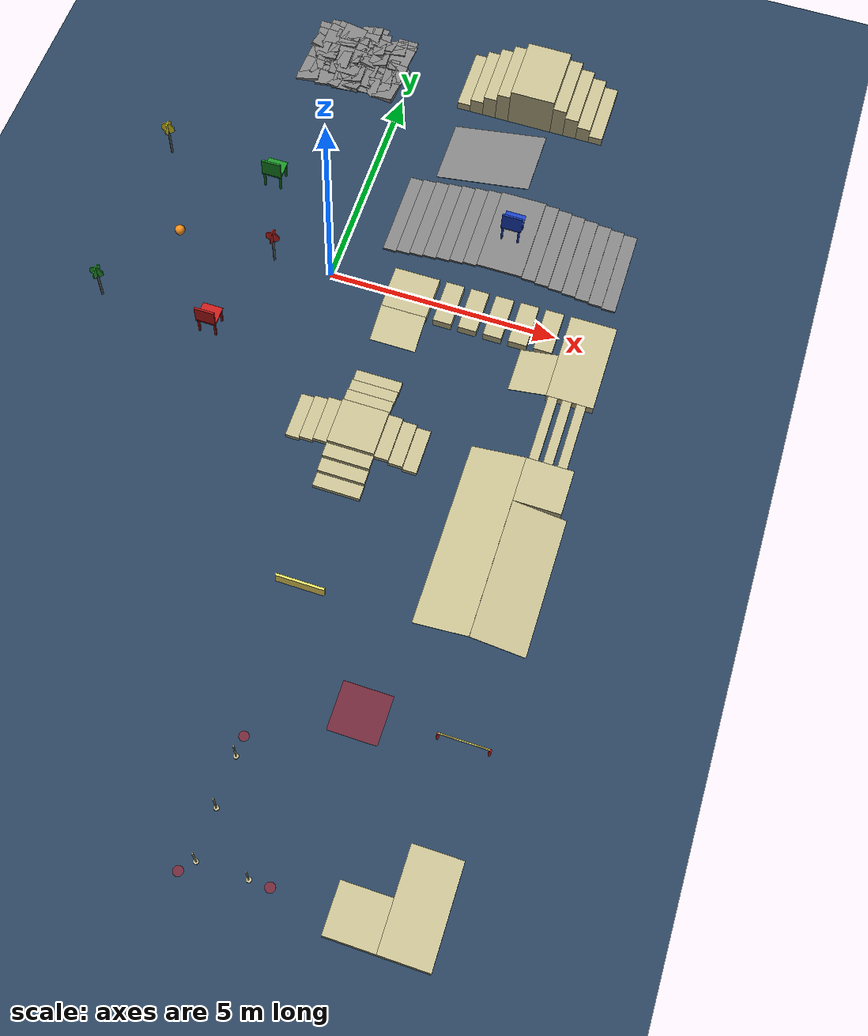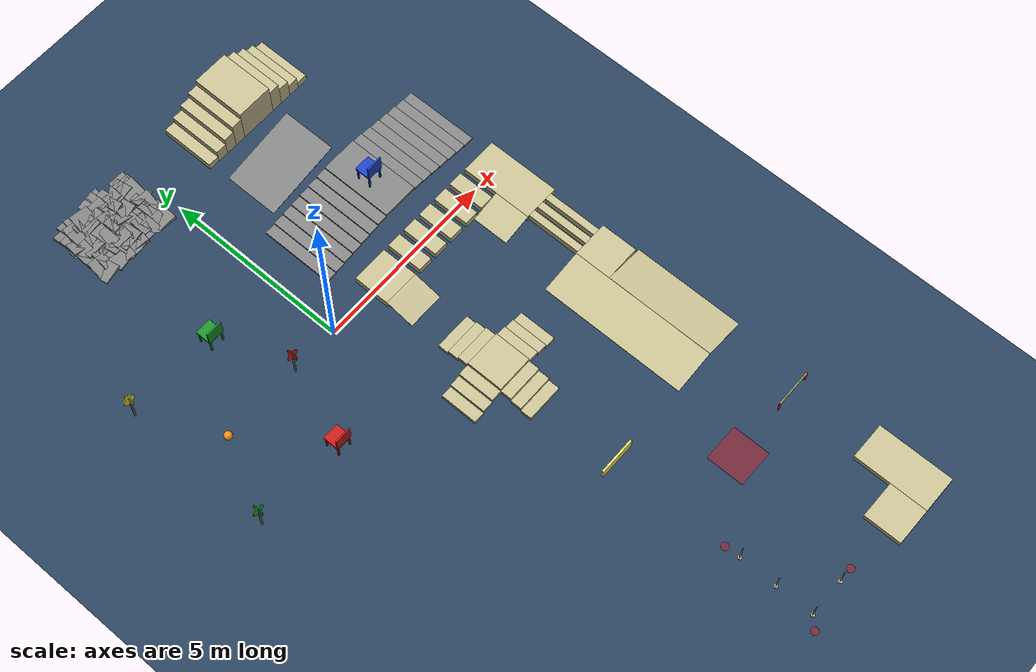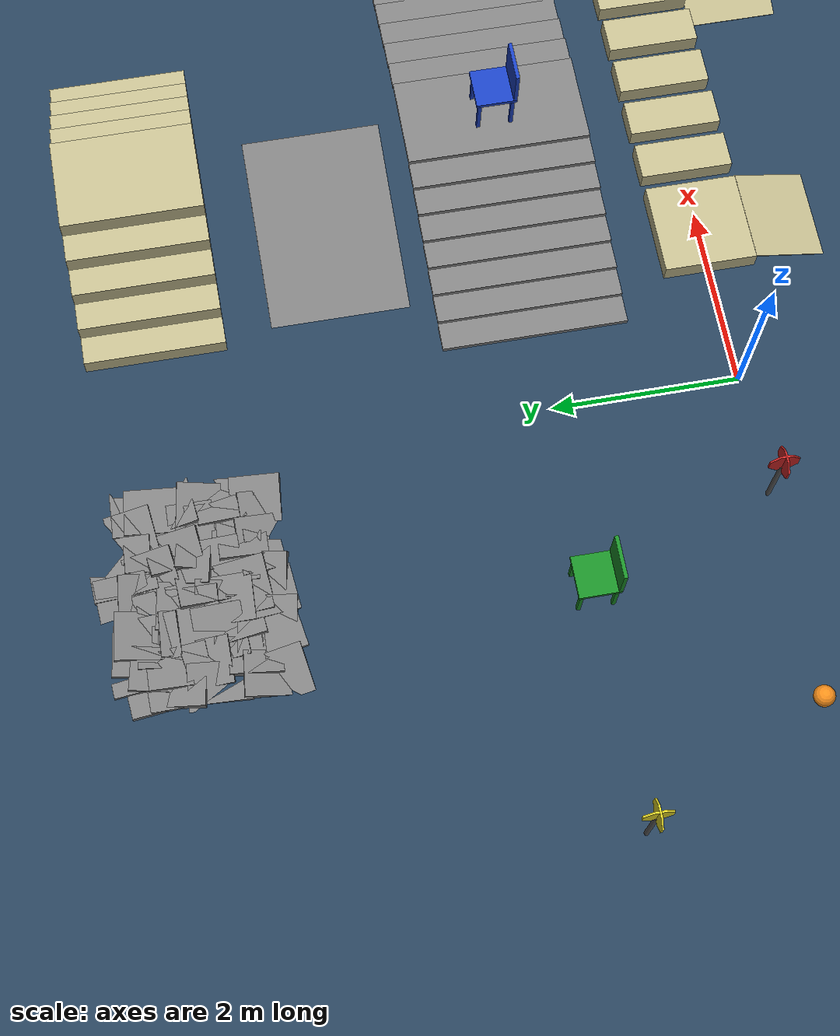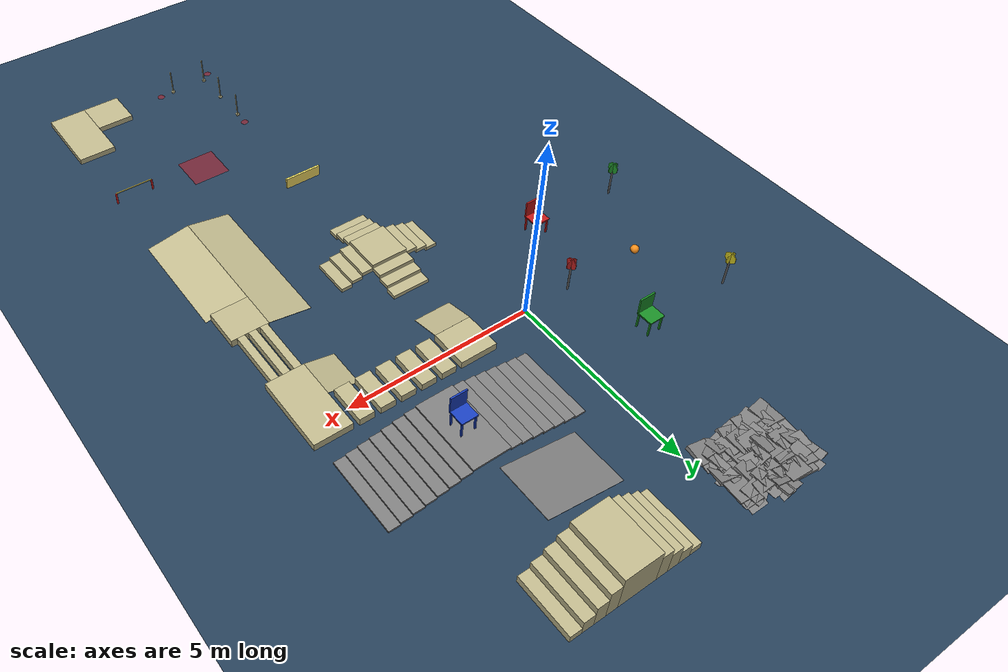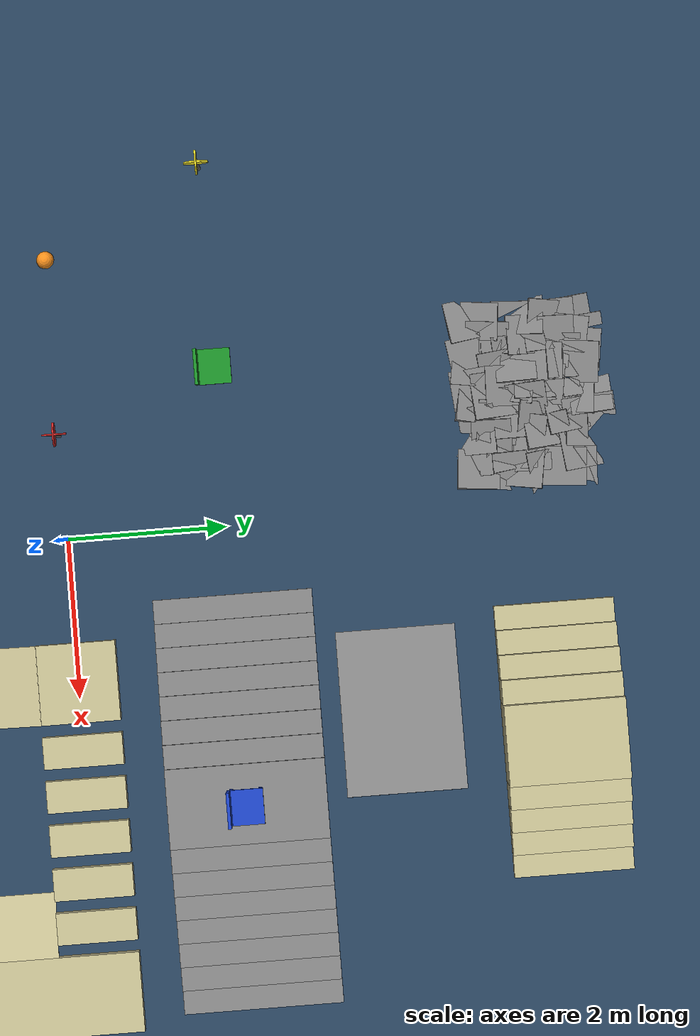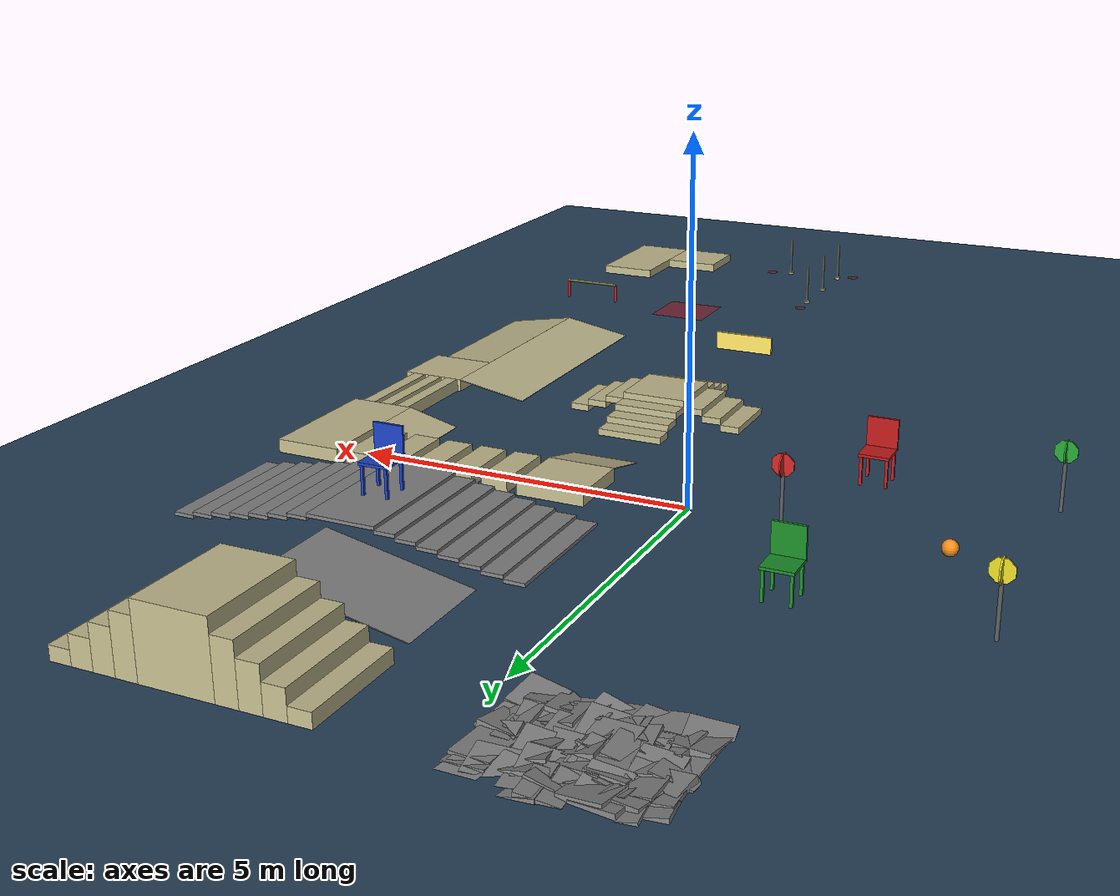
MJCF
<mujoco model="custom_scene">

  <asset>
    <texture type="2d" name="groundplane" builtin="checker" mark="edge" rgb1="0.2 0.3 0.4" rgb2="0.1 0.2 0.3" markrgb="0.8 0.8 0.8" width="300" height="300" />
    <material name="groundplane" texture="groundplane" texuniform="true" texrepeat="5 5" reflectance="0.2" />
    <material name="chair_green_mat" rgba="0.10 0.55 0.15 1" specular="0.1" shininess="0.1" />
    <material name="chair_red_mat" rgba="0.75 0.10 0.10 1" specular="0.1" shininess="0.1" />
    <material name="ball_orange_mat" rgba="0.95 0.55 0.10 1" specular="0.3" shininess="0.4" />
    <material name="sign_pole_mat" rgba="0.35 0.35 0.35 1" specular="0.2" shininess="0.2" />
    <texture name="sign_red_tex" type="2d" file="textures/stopsign_red.png" />
    <material name="sign_red_mat" texture="sign_red_tex" rgba="1 1 1 1" specular="0.2" shininess="0.2" />
    <texture name="sign_yellow_tex" type="2d" file="textures/stopsign_yellow.png" />
    <material name="sign_yellow_mat" texture="sign_yellow_tex" rgba="1 1 1 1" specular="0.2" shininess="0.2" />
    <texture name="sign_green_tex" type="2d" file="textures/stopsign_green.png" />
    <material name="sign_green_mat" texture="sign_green_tex" rgba="1 1 1 1" specular="0.2" shininess="0.2" />
    <material name="chair_blue_mat" rgba="0.10 0.25 0.75 1" specular="0.1" shininess="0.1" />
    <!-- (B, assist) octagonal STOP plate, printed by tools/make_stopsign_assets.py (its mesh option);
         faces normal to local +-y, texcoords map the same STOP texture on both faces -->
    <mesh name="stopsign_octagon"
      vertex="0 -0.01 0  0.15 -0.01 0.062132  0.062132 -0.01 0.15  -0.062132 -0.01 0.15  -0.15 -0.01 0.062132  -0.15 -0.01 -0.062132  -0.062132 -0.01 -0.15  0.062132 -0.01 -0.15  0.15 -0.01 -0.062132  0 0.01 0  0.15 0.01 0.062132  0.062132 0.01 0.15  -0.062132 0.01 0.15  -0.15 0.01 0.062132  -0.15 0.01 -0.062132  -0.062132 0.01 -0.15  0.062132 0.01 -0.15  0.15 0.01 -0.062132  0.15 -0.01 0.062132  0.062132 -0.01 0.15  0.15 0.01 0.062132  0.062132 0.01 0.15  0.062132 -0.01 0.15  -0.062132 -0.01 0.15  0.062132 0.01 0.15  -0.062132 0.01 0.15  -0.062132 -0.01 0.15  -0.15 -0.01 0.062132  -0.062132 0.01 0.15  -0.15 0.01 0.062132  -0.15 -0.01 0.062132  -0.15 -0.01 -0.062132  -0.15 0.01 0.062132  -0.15 0.01 -0.062132  -0.15 -0.01 -0.062132  -0.062132 -0.01 -0.15  -0.15 0.01 -0.062132  -0.062132 0.01 -0.15  -0.062132 -0.01 -0.15  0.062132 -0.01 -0.15  -0.062132 0.01 -0.15  0.062132 0.01 -0.15  0.062132 -0.01 -0.15  0.15 -0.01 -0.062132  0.062132 0.01 -0.15  0.15 0.01 -0.062132  0.15 -0.01 -0.062132  0.15 -0.01 0.062132  0.15 0.01 -0.062132  0.15 0.01 0.062132"
      face="0 1 2  0 2 3  0 3 4  0 4 5  0 5 6  0 6 7  0 7 8  0 8 1  9 11 10  9 12 11  9 13 12  9 14 13  9 15 14  9 16 15  9 17 16  9 10 17  18 20 21  18 21 19  22 24 25  22 25 23  26 28 29  26 29 27  30 32 33  30 33 31  34 36 37  34 37 35  38 40 41  38 41 39  42 44 45  42 45 43  46 48 49  46 49 47"
      texcoord="0.5 0.5  1 0.29289  0.70711 0  0.29289 0  0 0.29289  0 0.70711  0.29289 1  0.70711 1  1 0.70711  0.5 0.5  0 0.29289  0.29289 0  0.70711 0  1 0.29289  1 0.70711  0.70711 1  0.29289 1  0 0.70711  0.5 0.0225  0.5 0.0225  0.5 0.0225  0.5 0.0225  0.5 0.0225  0.5 0.0225  0.5 0.0225  0.5 0.0225  0.5 0.0225  0.5 0.0225  0.5 0.0225  0.5 0.0225  0.5 0.0225  0.5 0.0225  0.5 0.0225  0.5 0.0225  0.5 0.0225  0.5 0.0225  0.5 0.0225  0.5 0.0225  0.5 0.0225  0.5 0.0225  0.5 0.0225  0.5 0.0225  0.5 0.0225  0.5 0.0225  0.5 0.0225  0.5 0.0225  0.5 0.0225  0.5 0.0225  0.5 0.0225  0.5 0.0225" />
  </asset>
  <worldbody>
    <geom name="floor" size="0 0 0.05" type="plane" material="groundplane" />
    <geom pos="1.8 -7.0 0.15" type="box" size="0.025 0.5 0.15" quat="0.7071068 0.0 0.0 0.7071068" rgba="1.0 0.9 0.4 1.0" />
    <geom pos="4.8361 -12.5 0.075" type="box" size="0.5 0.5 0.075" quat="0.0 0.0 0.0 1.0" rgba="0.75 0.72 0.55 1.0" />
    <geom pos="5.8361 -12.0 0.075" type="box" size="0.5 1.0 0.075" quat="0.0 0.0 0.0 1.0" rgba="0.75 0.72 0.55 1.0" />
    <geom pos="6.2 -9.0 0.155" type="cylinder" size="0.025 0.155" quat="1.0 0.0 0.0 0.0" rgba="0.8 0.1 0.1 1.0" />
    <geom pos="5.2 -9.0 0.155" type="cylinder" size="0.025 0.155" quat="1.0 0.0 0.0 0.0" rgba="0.8 0.1 0.1 1.0" />
    <geom pos="5.7 -9.0 0.325" type="cylinder" size="0.015 0.5" quat="0.7071068 0.0 0.7071068 0.0" rgba="1.0 0.9 0.4 1.0" />
    <geom pos="3.7 -9.0 0.0" type="box" size="0.5 0.5 0.001" rgba="1.0 0.0 0.0 0.35" contype="0" conaffinity="0" />
    <geom pos="1.80 -4.75 0.05" type="box" size="0.15 0.5 0.05" quat="0.7071068 0.0 0.0 0.7071068" rgba="0.75 0.72 0.55 1.0" />
    <geom pos="1.80 -4.45 0.15" type="box" size="0.15 0.5 0.05" quat="0.7071068 0.0 0.0 0.7071068" rgba="0.75 0.72 0.55 1.0" />
    <geom pos="1.80 -4.15 0.25" type="box" size="0.15 0.5 0.05" quat="0.7071068 0.0 0.0 0.7071068" rgba="0.75 0.72 0.55 1.0" />
    <geom pos="1.80 -3.50 0.35" type="box" size="0.5 0.5 0.05" quat="0.7071068 0.0 0.0 0.7071068" rgba="0.75 0.72 0.55 1.0" />
    <geom pos="1.80 -2.85 0.25" type="box" size="0.15 0.5 0.05" quat="0.7071068 0.0 0.0 0.7071068" rgba="0.75 0.72 0.55 1.0" />
    <geom pos="1.80 -2.55 0.15" type="box" size="0.15 0.5 0.05" quat="0.7071068 0.0 0.0 0.7071068" rgba="0.75 0.72 0.55 1.0" />
    <geom pos="1.80 -2.25 0.05" type="box" size="0.15 0.5 0.05" quat="0.7071068 0.0 0.0 0.7071068" rgba="0.75 0.72 0.55 1.0" />
    <geom pos="2.45 -3.50 0.25" type="box" size="0.15 0.5 0.05" quat="1.0 0.0 0.0 0.0" rgba="0.75 0.72 0.55 1.0" />
    <geom pos="2.75 -3.50 0.15" type="box" size="0.15 0.5 0.05" quat="1.0 0.0 0.0 0.0" rgba="0.75 0.72 0.55 1.0" />
    <geom pos="3.05 -3.50 0.05" type="box" size="0.15 0.5 0.05" quat="1.0 0.0 0.0 0.0" rgba="0.75 0.72 0.55 1.0" />
    <geom pos="1.15 -3.50 0.25" type="box" size="0.15 0.5 0.05" quat="1.0 0.0 0.0 0.0" rgba="0.75 0.72 0.55 1.0" />
    <geom pos="0.85 -3.50 0.15" type="box" size="0.15 0.5 0.05" quat="1.0 0.0 0.0 0.0" rgba="0.75 0.72 0.55 1.0" />
    <geom pos="0.55 -3.50 0.05" type="box" size="0.15 0.5 0.05" quat="1.0 0.0 0.0 0.0" rgba="0.75 0.72 0.55 1.0" />
    <geom pos="1.8 -0.88 0.1" type="box" size="0.40 0.5 0.005" quat="0.701836 0.086175 -0.086175 0.701836" rgba="0.75 0.72 0.55 1.0" />
    <geom pos="1.8 0.0 0.10" type="box" size="0.5 0.5 0.10" quat="1.0 0.0 0.0 0.0" rgba="0.75 0.72 0.55 1.0" />
    <geom pos="2.65 0.0 0.10" type="box" size="0.2 0.5 0.10" quat="1.0 0.0 0.0 0.0" rgba="0.75 0.72 0.55 1.0" />
    <geom pos="3.2 0.0 0.10" type="box" size="0.2 0.5 0.10" quat="1.0 0.0 0.0 0.0" rgba="0.75 0.72 0.55 1.0" />
    <geom pos="3.75 0.0 0.10" type="box" size="0.2 0.5 0.10" quat="1.0 0.0 0.0 0.0" rgba="0.75 0.72 0.55 1.0" />
    <geom pos="4.3 0.0 0.10" type="box" size="0.2 0.5 0.10" quat="1.0 0.0 0.0 0.0" rgba="0.75 0.72 0.55 1.0" />
    <geom pos="4.85 0.0 0.10" type="box" size="0.2 0.5 0.10" quat="1.0 0.0 0.0 0.0" rgba="0.75 0.72 0.55 1.0" />
    <geom pos="5.7 -0.5 0.10" type="box" size="0.5 1.0 0.10" quat="1.0 0.0 0.0 0.0" rgba="0.75 0.72 0.55 1.0" />
    <geom pos="4.8002 -1.0 0.0951" type="box" size="0.4133 0.5 0.005" quat="0.992546 0.0 -0.121869 0.0" rgba="0.75 0.72 0.55 1.0" />
    <geom pos="5.35 -2.25 0.10" type="box" size="0.1 0.75 0.10" quat="1.0 0.0 0.0 0.0" rgba="0.75 0.72 0.55 1.0" />
    <geom pos="5.65 -2.25 0.10" type="box" size="0.1 0.75 0.10" quat="1.0 0.0 0.0 0.0" rgba="0.75 0.72 0.55 1.0" />
    <geom pos="5.95 -2.25 0.10" type="box" size="0.1 0.75 0.10" quat="1.0 0.0 0.0 0.0" rgba="0.75 0.72 0.55 1.0" />
    <geom pos="5.7 -3.5 0.10" type="box" size="0.5 0.5 0.10" quat="1.0 0.0 0.0 0.0" rgba="0.75 0.72 0.55 1.0" />
    <geom pos="4.6338 -5.0 0.0951" type="box" size="0.5759 2.0 0.005" quat="0.9961947 0.0 -0.0871557 0.0" rgba="0.75 0.72 0.55 1.0" />
    <geom pos="5.7681 -5.5 0.0951" type="box" size="0.5759 1.5 0.005" quat="0.9961947 0.0 0.0871557 0.0" rgba="0.75 0.72 0.55 1.0" />
    <geom pos="1.8 -10.1 0.0" type="cylinder" size="0.1 0.001" rgba="1.0 0.0 0.0 0.35" contype="0" conaffinity="0" />
    <geom pos="3.2 -12.5 0.0" type="cylinder" size="0.1 0.001" rgba="1.0 0.0 0.0 0.35" contype="0" conaffinity="0" />
    <geom pos="1.55 -12.75 0.0" type="cylinder" size="0.1 0.001" rgba="1.0 0.0 0.0 0.35" contype="0" conaffinity="0" />
    <geom pos="1.8 -10.5 0.02" type="cylinder" size="0.05 0.02" quat="1.0 0.0 0.0 0.0" rgba="0.75 0.72 0.55 1.0" />
    <geom pos="1.8 -10.5 0.37" type="cylinder" size="0.015 0.33" quat="1.0 0.0 0.0 0.0" rgba="0.75 0.72 0.55 1.0" />
    <geom pos="1.8 -11.5 0.02" type="cylinder" size="0.05 0.02" quat="1.0 0.0 0.0 0.0" rgba="0.75 0.72 0.55 1.0" />
    <geom pos="1.8 -11.5 0.37" type="cylinder" size="0.015 0.33" quat="1.0 0.0 0.0 0.0" rgba="0.75 0.72 0.55 1.0" />
    <geom pos="1.8 -12.5 0.02" type="cylinder" size="0.05 0.02" quat="1.0 0.0 0.0 0.0" rgba="0.75 0.72 0.55 1.0" />
    <geom pos="1.8 -12.5 0.37" type="cylinder" size="0.015 0.33" quat="1.0 0.0 0.0 0.0" rgba="0.75 0.72 0.55 1.0" />
    <geom pos="2.8 -12.5 0.02" type="cylinder" size="0.05 0.02" quat="1.0 0.0 0.0 0.0" rgba="0.75 0.72 0.55 1.0" />
    <geom pos="2.8 -12.5 0.37" type="cylinder" size="0.015 0.33" quat="1.0 0.0 0.0 0.0" rgba="0.75 0.72 0.55 1.0" />
    <geom pos="1.0 2.0 0.025" type="box" size="0.15 1.0 0.025" quat="1.0 0.0 0.0 0.0" />
    <geom pos="1.3 2.0 0.075" type="box" size="0.15 1.0 0.025" quat="1.0 0.0 0.0 0.0" />
    <geom pos="1.6 2.0 0.125" type="box" size="0.15 1.0 0.025" quat="1.0 0.0 0.0 0.0" />
    <geom pos="1.9 2.0 0.175" type="box" size="0.15 1.0 0.025" quat="1.0 0.0 0.0 0.0" />
    <geom pos="2.2 2.0 0.225" type="box" size="0.15 1.0 0.025" quat="1.0 0.0 0.0 0.0" />
    <geom pos="2.5 2.0 0.275" type="box" size="0.15 1.0 0.025" quat="1.0 0.0 0.0 0.0" />
    <geom pos="2.8 2.0 0.325" type="box" size="0.15 1.0 0.025" quat="1.0 0.0 0.0 0.0" />
    <geom pos="3.45 2.0 0.375" type="box" size="0.5 1.0 0.025" quat="1.0 0.0 0.0 0.0" />
    <geom pos="4.1 2.0 0.325" type="box" size="0.15 1.0 0.025" quat="1.0 0.0 0.0 0.0" />
    <geom pos="4.4 2.0 0.275" type="box" size="0.15 1.0 0.025" quat="1.0 0.0 0.0 0.0" />
    <geom pos="4.7 2.0 0.225" type="box" size="0.15 1.0 0.025" quat="1.0 0.0 0.0 0.0" />
    <geom pos="5.0 2.0 0.175" type="box" size="0.15 1.0 0.025" quat="1.0 0.0 0.0 0.0" />
    <geom pos="5.3 2.0 0.125" type="box" size="0.15 1.0 0.025" quat="1.0 0.0 0.0 0.0" />
    <geom pos="5.6 2.0 0.075" type="box" size="0.15 1.0 0.025" quat="1.0 0.0 0.0 0.0" />
    <geom pos="5.9 2.0 0.025" type="box" size="0.15 1.0 0.025" quat="1.0 0.0 0.0 0.0" />
    <geom pos="2.0 4.0 0.1" type="box" size="1.5 0.75 0.005" quat="0.9950041652780258 0.0 -0.09983341664682815 0.0" />
    <geom pos="1.4 6.0 0.10" type="box" size="0.15 0.75 0.10" quat="1.0 0.0 0.0 0.0" rgba="0.75 0.72 0.55 1.0" />
    <geom pos="1.7 6.0 0.20" type="box" size="0.15 0.75 0.20" quat="1.0 0.0 0.0 0.0" rgba="0.75 0.72 0.55 1.0" />
    <geom pos="2.0 6.0 0.30" type="box" size="0.15 0.75 0.30" quat="1.0 0.0 0.0 0.0" rgba="0.75 0.72 0.55 1.0" />
    <geom pos="2.3 6.0 0.40" type="box" size="0.15 0.75 0.40" quat="1.0 0.0 0.0 0.0" rgba="0.75 0.72 0.55 1.0" />
    <geom pos="2.95 6.0 0.50" type="box" size="0.50 0.75 0.50" quat="1.0 0.0 0.0 0.0" rgba="0.75 0.72 0.55 1.0" />
    <geom pos="3.60 6.0 0.40" type="box" size="0.15 0.75 0.40" quat="1.0 0.0 0.0 0.0" rgba="0.75 0.72 0.55 1.0" />
    <geom pos="3.90 6.0 0.30" type="box" size="0.15 0.75 0.30" quat="1.0 0.0 0.0 0.0" rgba="0.75 0.72 0.55 1.0" />
    <geom pos="4.20 6.0 0.20" type="box" size="0.15 0.75 0.20" quat="1.0 0.0 0.0 0.0" rgba="0.75 0.72 0.55 1.0" />
    <geom pos="4.50 6.0 0.10" type="box" size="0.15 0.75 0.10" quat="1.0 0.0 0.0 0.0" rgba="0.75 0.72 0.55 1.0" />
    <geom pos="-2.3179973398407565 5.173660321080885 -0.25" type="box" size="0.2568216778785459 0.2608020098770089 0.2619541072037832" quat="0.9930658271270357 -0.05910360995856133 -0.06731065544310916 0.0761334482746007" />
    <geom pos="-2.3179973398407565 5.3620612607436735 -0.25" type="box" size="0.23778028947050467 0.26051225137569556 0.27137457425982286" quat="0.9959802827127009 0.07435995796871331 0.0004862731479656538 -0.04993632582444846" />
    <geom pos="-2.3179973398407565 5.545897059602109 -0.25" type="box" size="0.23841994611378936 0.2717839884518381 0.22585827399286504" quat="0.9983504429181294 -0.004811901627841528 0.03471877670768104 -0.045473566737405234" />
    <geom pos="-2.3179973398407565 5.7436240471772795 -0.25" type="box" size="0.2552179019048769 0.2548992578792955 0.22547735976326444" quat="0.9968270877924189 -0.029673908987198697 0.06777847718526858 -0.029347814214192768" />
    <geom pos="-2.3179973398407565 5.940214647011584 -0.25" type="box" size="0.24313116620329878 0.2372064979204117 0.26079933745117434" quat="0.9952106364954509 0.05088987714749159 -0.07605843245051555 -0.03436748846516202" />
    <geom pos="-2.3179973398407565 6.165430585901471 -0.25" type="box" size="0.24786042386990592 0.2322559052231109 0.2644037606269708" quat="0.9936075351397807 -0.05017393314139304 0.06986162224674641 -0.07311632022760194" />
    <geom pos="-2.3179973398407565 6.315657865031069 -0.25" type="box" size="0.23704265198840277 0.24982080672772003 0.2530694373586838" quat="0.9981716459301547 0.036179123385437884 0.04523497974247521 0.017269420947002005" />
    <geom pos="-2.3179973398407565 6.489372835072359 -0.25" type="box" size="0.2647428927965494 0.2716292502682415 0.23725049444938928" quat="0.9954041516289313 0.019099981466976248 0.07663366510923347 0.05415761257454444" />
    <geom pos="-2.094119617957536 5.194943631570213 -0.25" type="box" size="0.23176840693038148 0.23782936054799508 0.2282032657053922" quat="0.9973366591969123 0.030692664684553082 -0.030015392527106853 0.058962910104125923" />
    <geom pos="-2.094119617957536 5.441090326561234 -0.25" type="box" size="0.2602142310926322 0.27213502289176367 0.2574009440402366" quat="0.9948915480473169 0.023650461407535205 0.08508706956405496 -0.04890453856469255" />
    <geom pos="-2.094119617957536 5.642958951230403 -0.25" type="box" size="0.24800055056479955 0.24050676557282252 0.23522489807277194" quat="0.9912055235117067 0.06188914817453858 -0.09720856678264424 -0.0650525790586179" />
    <geom pos="-2.094119617957536 5.884810142659838 -0.25" type="box" size="0.24637516954806898 0.24364583504893206 0.2682443460752295" quat="0.9964495083946477 -0.07467561549070643 -0.038754439691442995 0.003165924091257204" />
    <geom pos="-2.094119617957536 6.129893093768145 -0.25" type="box" size="0.2378958269703999 0.25045408022075055 0.24760364656411665" quat="0.9946240462872651 -0.03963038800955788 -0.08917648605658504 0.03464091840526007" />
    <geom pos="-2.094119617957536 6.31135792935651 -0.25" type="box" size="0.2612154064649683 0.2252849660353503 0.26933214617336004" quat="0.997742809172301 0.019590451180868298 0.06391648942914147 -0.006339033565912353" />
    <geom pos="-2.094119617957536 6.4905285510291915 -0.25" type="box" size="0.22768983323309258 0.23025468157122184 0.2748062344121069" quat="0.9940843963100783 0.05105793020576152 0.009164090402224958 -0.0954218016127878" />
    <geom pos="-2.094119617957536 6.650993287072798 -0.25" type="box" size="0.25443787917913946 0.24575387105878618 0.22934424641420587" quat="0.9953832160779188 -0.0075142647566912866 0.08305501342257929 0.04751477371219154" />
    <geom pos="-1.8951777534978893 5.178742263102535 -0.25" type="box" size="0.256127371544264 0.24353861032614957 0.2714578153598507" quat="0.996547165679354 -0.008558846106514282 0.009384988866828401 0.08205129318749771" />
    <geom pos="-1.8951777534978893 5.353646654030374 -0.25" type="box" size="0.23858897994497189 0.2426691342857623 0.26961659613969635" quat="0.997689480058865 0.014145078555906384 0.009115651940537827 -0.06582190381793727" />
    <geom pos="-1.8951777534978893 5.575640096199311 -0.25" type="box" size="0.24430646334884096 0.2676093509240798 0.23693271670520474" quat="0.9976019172675967 -0.06794745094616256 0.006187887696065785 -0.011630503849579829" />
    <geom pos="-1.8951777534978893 5.728196634759373 -0.25" type="box" size="0.25668697148716296 0.2743986770827004 0.23696403861156407" quat="0.9946311966964959 -0.0774649076913635 0.05866511796477466 0.03558615698054331" />
    <geom pos="-1.8951777534978893 5.954288148947323 -0.25" type="box" size="0.2748179458028994 0.25407956175122554 0.25142548243710355" quat="0.9927720663552536 0.03885622734718657 0.06180632563910765 0.09525647469886914" />
    <geom pos="-1.8951777534978893 6.198076908897641 -0.25" type="box" size="0.23522918501552104 0.2714895927340788 0.23659922178360912" quat="0.9944408196408429 0.027722532803612636 -0.06883505448003607 -0.07470376618171105" />
    <geom pos="-1.8951777534978893 6.356335079330304 -0.25" type="box" size="0.253243646653926 0.26648639763264487 0.22751627090926196" quat="0.9924345646356405 0.06351743627133029 0.09661714031088077 -0.041283149154730255" />
    <geom pos="-1.8951777534978893 6.6037178705715744 -0.25" type="box" size="0.2664884535468762 0.26472237049442093 0.2545826559482188" quat="0.996208812433608 0.04792667434016892 0.03088022810200046 -0.06570728596343135" />
    <geom pos="-1.7450143557797366 5.181798049538029 -0.25" type="box" size="0.22764974830145798 0.2314500042225232 0.26635647118774647" quat="0.996420562587967 -0.02530598413067966 -0.01712092616039989 -0.07881968983996092" />
    <geom pos="-1.7450143557797366 5.396539066742657 -0.25" type="box" size="0.24515338305934362 0.25502436912192245 0.23509532716059323" quat="0.9974817825235419 0.033698559354477776 -0.06057332552735373 -0.01501242370995589" />
    <geom pos="-1.7450143557797366 5.5477605493550115 -0.25" type="box" size="0.2368415768982088 0.2653984778068547 0.25193186806340717" quat="0.9933816957092091 -0.04426535864216467 0.0892264769079807 0.057201577537394625" />
    <geom pos="-1.7450143557797366 5.764238738853998 -0.25" type="box" size="0.257475541143157 0.25587521442146555 0.2684267956125346" quat="0.9955849335110497 0.004076118120639651 -0.09299366924131539 0.012091439447074191" />
    <geom pos="-1.7450143557797366 5.942956213887727 -0.25" type="box" size="0.23647345784635188 0.22779489919605103 0.2690566454457882" quat="0.9997372307105926 0.020286738832439623 -0.010113822112874779 0.003410038259163467" />
    <geom pos="-1.7450143557797366 6.162981335139796 -0.25" type="box" size="0.2336152227884161 0.23785626414299832 0.26272786991330355" quat="0.9954569549676405 0.08638675499005252 -0.03150236191317218 -0.024705881136540285" />
    <geom pos="-1.7450143557797366 6.344025407207907 -0.25" type="box" size="0.2364006101773331 0.23674709170116234 0.2660167000427503" quat="0.9941020005048972 -0.09350614404282417 -0.05493059192638792 0.0006660998579442658" />
    <geom pos="-1.7450143557797366 6.5791872438688825 -0.25" type="box" size="0.259653062502181 0.26359758888480966 0.27170867851854713" quat="0.9955751902075182 0.06572529509454274 0.04059253213564211 -0.05350207998588654" />
    <geom pos="-1.4950537649717406 5.196975242498044 -0.25" type="box" size="0.24902209995429173 0.24604186796843594 0.26555264385759036" quat="0.9981753741369879 0.027059282981497578 0.02078151255996191 0.049818133312398136" />
    <geom pos="-1.4950537649717406 5.415093649392617 -0.25" type="box" size="0.22561317519118573 0.23246623591498758 0.2516053992906602" quat="0.9961431033663982 -0.019679813255757937 0.07777937635153075 0.035524515199325105" />
    <geom pos="-1.4950537649717406 5.596072881787104 -0.25" type="box" size="0.2545347271371952 0.2527292932516396 0.272364707011277" quat="0.9987990019474599 -0.0468132050914785 0.002764373695484487 -0.01419280718860587" />
    <geom pos="-1.4950537649717406 5.788444207457658 -0.25" type="box" size="0.257823578756761 0.22815201323013437 0.2506904868770564" quat="0.9907800223935689 0.08207700037219429 -0.06679273748567588 -0.08459931119619979" />
    <geom pos="-1.4950537649717406 5.962479724512656 -0.25" type="box" size="0.23447002037921025 0.260091883647859 0.2613547781123637" quat="0.994185747243896 -0.045779429335849345 -0.09537527521663794 -0.020062420196245392" />
    <geom pos="-1.4950537649717406 6.137620949716146 -0.25" type="box" size="0.25502378303486756 0.24137626830945555 0.26521755821448284" quat="0.9954511067004865 0.04827241542514884 0.023378972724717166 -0.07874193109224191" />
    <geom pos="-1.4950537649717406 6.345742058941403 -0.25" type="box" size="0.23763376291279575 0.27259418014745557 0.24184880568666417" quat="0.9979730938550316 -0.0521706328108408 -0.03256129013590577 0.01636127740178204" />
    <geom pos="-1.4950537649717406 6.548966807280673 -0.25" type="box" size="0.23004532593424165 0.24736965888987583 0.22917624237245732" quat="0.993938322382385 -0.041286377558295506 -0.09233464220936707 0.04308549844056845" />
    <geom pos="-1.2872521554407157 5.194072124237239 -0.25" type="box" size="0.2725857334366114 0.23611730648841156 0.25109418723334265" quat="0.9870880287314421 -0.09538067591152324 -0.0888119213223197 -0.09312460914696315" />
    <geom pos="-1.2872521554407157 5.418639818976418 -0.25" type="box" size="0.2326397456179607 0.2609646699674687 0.2717115772948157" quat="0.9928206111485406 -0.07383059897166898 -0.08473752136579614 0.040936892980589765" />
    <geom pos="-1.2872521554407157 5.655974569843163 -0.25" type="box" size="0.22633109461398734 0.25911291311168594 0.23532484499883452" quat="0.9947769304653071 -0.023834507399340135 0.09176246279588879 -0.037820963666801724" />
    <geom pos="-1.2872521554407157 5.8981628648303595 -0.25" type="box" size="0.27278934520816167 0.2559269445001904 0.26076472835929454" quat="0.9936318869346414 0.0561019165840355 0.09234219275279033 0.0319557140415977" />
    <geom pos="-1.2872521554407157 6.064939027275534 -0.25" type="box" size="0.2481756437845515 0.2613413397088905 0.24788858471207542" quat="0.9992310163557966 0.006919915638721734 0.03652449975321466 -0.012468024618680441" />
    <geom pos="-1.2872521554407157 6.288670079370122 -0.25" type="box" size="0.2574127585385611 0.27445220033632356 0.22507618952620437" quat="0.9984337612791753 0.04947883993440395 -0.0010074967830211658 -0.026093173185657285" />
    <geom pos="-1.2872521554407157 6.4987760234638605 -0.25" type="box" size="0.2442462188069663 0.2639082925274208 0.24918893213917415" quat="0.9910480688126146 0.08639971284060838 -0.0903343762232188 -0.04688832899783648" />
    <geom pos="-1.2872521554407157 6.675611985491267 -0.25" type="box" size="0.2507168814441121 0.26699708557208374 0.26588306060638556" quat="0.9968882348111167 0.009466759168649483 -0.06920917552433178 0.03652831489763918" />
    <geom pos="-1.0678149575697586 5.238251070535694 -0.25" type="box" size="0.2331754586513582 0.22873009754409884 0.2593258638743009" quat="0.9962563091989393 0.014506022500180732 0.069646748226122 0.049114887295595266" />
    <geom pos="-1.0678149575697586 5.471732496077581 -0.25" type="box" size="0.2653495693182789 0.26581370557074685 0.2509273010188512" quat="0.9948019811445705 -0.05898118120008214 0.04034485064897968 -0.07254330845220838" />
    <geom pos="-1.0678149575697586 5.691153717662407 -0.25" type="box" size="0.26309077142424103 0.26536949948987093 0.26566703066149744" quat="0.998331608401392 -0.025703385975953945 -0.05139460706256987 0.005650661991725779" />
    <geom pos="-1.0678149575697586 5.938910564562482 -0.25" type="box" size="0.23082606038737274 0.23890770539441533 0.25941695887199245" quat="0.99040745217393 -0.09494180013051996 0.05600240658814475 -0.08332384846283197" />
    <geom pos="-1.0678149575697586 6.13746533389903 -0.25" type="box" size="0.2676431215498913 0.2569308659994288 0.24597694927356487" quat="0.9955894165044442 0.04511524606234168 -0.003741035154326279 -0.08217258042101841" />
    <geom pos="-1.0678149575697586 6.328213254628996 -0.25" type="box" size="0.24188540919954635 0.25556145122229207 0.2605619987765001" quat="0.9929731934387934 -0.06598945456828725 -0.06809928840246085 0.07079629875087447" />
    <geom pos="-1.0678149575697586 6.554891603524267 -0.25" type="box" size="0.23121916641107804 0.25266417867731916 0.25489063309084503" quat="0.9984565221200774 -0.02714563973423854 0.029423903667849492 0.03849573446816443" />
    <geom pos="-1.0678149575697586 6.718482966003368 -0.25" type="box" size="0.27418971733780156 0.2623437838864593 0.23694037285314332" quat="0.9968347573500278 0.015128289848683302 0.06990516881209438 0.03471121949050888" />
    <geom pos="-0.8851136474992356 5.233272057743225 -0.25" type="box" size="0.2587161160845902 0.2542459313914242 0.25268742624288776" quat="0.9956323623605605 0.07455213252171443 -0.05585558926184348 0.006191260373025539" />
    <geom pos="-0.8851136474992356 5.410759300563648 -0.25" type="box" size="0.24019625793101548 0.2509280955260936 0.26698317271101046" quat="0.9960056830073374 0.025487333399660517 0.08516393482003458 -0.008377318140719903" />
    <geom pos="-0.8851136474992356 5.622546965631826 -0.25" type="box" size="0.22527085609750916 0.22924847380626232 0.23073331588883172" quat="0.9982201065088221 0.016292210993739946 0.013620740418279952 0.05572843307423328" />
    <geom pos="-0.8851136474992356 5.856118124892678 -0.25" type="box" size="0.26833255247166926 0.2512767990265972 0.2502231376336179" quat="0.9914910532543448 0.0657880493114159 0.05073139628229043 -0.10021850784978792" />
    <geom pos="-0.8851136474992356 6.010914595891683 -0.25" type="box" size="0.24926441451407527 0.22868800964152894 0.26501630221174116" quat="0.990736605756697 -0.0765632176593298 -0.09876375004658954 0.05314859727296924" />
    <geom pos="-0.8851136474992356 6.1657945570092965 -0.25" type="box" size="0.26823427325895977 0.263134568634285 0.23692064318485426" quat="0.9903439387899988 0.07219524819688558 0.09310840228148876 0.07305856872598579" />
    <geom pos="-0.8851136474992356 6.383066094410735 -0.25" type="box" size="0.23772929143507357 0.2619329708548053 0.23258884134606547" quat="0.9928463525385446 0.07348810370848206 0.09252710448645944 -0.017156742103069993" />
    <geom pos="-0.8851136474992356 6.551482176174038 -0.25" type="box" size="0.25127741834221506 0.25307864976328337 0.234931895271364" quat="0.994062479132312 -0.084918495271965 -0.05565932062022146 -0.03912386445844099" />
    <geom pos="-0.6441452943469552 5.193190826541208 -0.25" type="box" size="0.27016649011158844 0.23778885128164629 0.25859862297032477" quat="0.9957774962333289 0.08893738517887846 -0.021654911548168992 0.006955883744530942" />
    <geom pos="-0.6441452943469552 5.407266358883468 -0.25" type="box" size="0.24982888074520473 0.26972381569065607 0.2275629646713632" quat="0.9942571418988088 0.02444442288698024 0.050336521935401994 -0.09122193010664256" />
    <geom pos="-0.6441452943469552 5.56363948710079 -0.25" type="box" size="0.24725848381417467 0.2326432801330426 0.2476341019968084" quat="0.9935769557551848 -0.05688836927692267 -0.06858315894908604 0.0697488117593134" />
    <geom pos="-0.6441452943469552 5.716461923308758 -0.25" type="box" size="0.226746163574222 0.25188961955216527 0.24650452053954758" quat="0.9981029078160676 0.03471313574303335 -0.0493522060742233 -0.012245136651074443" />
    <geom pos="-0.6441452943469552 5.896430073001983 -0.25" type="box" size="0.25284949298017617 0.23421620066432108 0.2621382648463894" quat="0.9996413412447853 0.009523771195346772 -0.02374945051322109 -0.007902547492127014" />
    <geom pos="-0.6441452943469552 6.110845613879558 -0.25" type="box" size="0.23421403581041014 0.2504556848552827 0.24096555776925194" quat="0.9982371379292613 0.05906199571247059 0.004184466367765714 0.004097238396071534" />
    <geom pos="-0.6441452943469552 6.301410327752269 -0.25" type="box" size="0.2296817145699627 0.2701766916372966 0.22803599234835198" quat="0.9993879202059675 0.00903361239651759 0.0071600522792900426 -0.03302896372607247" />
    <geom pos="-0.6441452943469552 6.470340592771366 -0.25" type="box" size="0.2742166750011587 0.23990439594655139 0.2609404931878803" quat="0.9954980192986956 -0.06477558432537366 -0.03478863652617152 0.059812774691783824" />
    <geom pos="-0.43033316974190594 5.176946043237525 -0.25" type="box" size="0.2511344405622137 0.26383180387822514 0.2729516287367074" quat="0.9939152287364423 -0.054017256979398534 -0.08418383902399898 -0.0461273810376057" />
    <geom pos="-0.43033316974190594 5.409693792302493 -0.25" type="box" size="0.23878438774624536 0.22858057493504688 0.24808981791323623" quat="0.9942721168135948 -0.06322741578652484 -0.032958930763236916 -0.0796175891553822" />
    <geom pos="-0.43033316974190594 5.573593446642387 -0.25" type="box" size="0.2647545698926724 0.25215736713350106 0.25522885339490087" quat="0.9971918839448468 -0.004732654353889047 0.07222000940536273 0.019241071144380294" />
    <geom pos="-0.43033316974190594 5.819531161619798 -0.25" type="box" size="0.2538318010250847 0.23661725487197 0.26323696729639623" quat="0.9929867679849618 0.07588268800385974 -0.046355180482866284 -0.07791208834634974" />
    <geom pos="-0.43033316974190594 6.047888701789067 -0.25" type="box" size="0.25684720236482583 0.25568474221031684 0.24397094296107352" quat="0.9925256546500537 -0.08214715587137877 0.06615741576234473 0.06138294537877935" />
    <geom pos="-0.43033316974190594 6.283676056613722 -0.25" type="box" size="0.2432692787269645 0.2742601402399693 0.2689467974776609" quat="0.9989897410981501 0.0047037010179340685 0.0014590493232283363 -0.04466814919444852" />
    <geom pos="-0.43033316974190594 6.458239009480634 -0.25" type="box" size="0.2474330649412728 0.2551435998627988 0.23002773988805483" quat="0.9982311862818315 0.0506459597703481 0.025989046975463247 -0.01714802993392417" />
    <geom pos="-0.43033316974190594 6.703309377175586 -0.25" type="box" size="0.2301029552870502 0.2556223065028505 0.2349557527965884" quat="0.9948672058648923 -0.034182171957127715 -0.0030330068097560517 -0.09519255582537542" />
    <body name="green_chair" pos="-2.0 2.0 0">
      <geom type="box" size="0.02 0.02 0.21" pos=" 0.18  0.18 0.21" material="chair_green_mat" />
      <geom type="box" size="0.02 0.02 0.21" pos=" 0.18 -0.18 0.21" material="chair_green_mat" />
      <geom type="box" size="0.02 0.02 0.21" pos="-0.18  0.18 0.21" material="chair_green_mat" />
      <geom type="box" size="0.02 0.02 0.21" pos="-0.18 -0.18 0.21" material="chair_green_mat" />
      <geom type="box" size="0.22 0.22 0.02" pos="0 0 0.44" material="chair_green_mat" />
      <geom type="box" size="0.22 0.02 0.22" pos="0 -0.20 0.66" material="chair_green_mat" />
    </body>
    <body name="red_chair" pos="-2.0 -2.0 0">
      <geom type="box" size="0.02 0.02 0.21" pos=" 0.18  0.18 0.21" material="chair_red_mat" />
      <geom type="box" size="0.02 0.02 0.21" pos=" 0.18 -0.18 0.21" material="chair_red_mat" />
      <geom type="box" size="0.02 0.02 0.21" pos="-0.18  0.18 0.21" material="chair_red_mat" />
      <geom type="box" size="0.02 0.02 0.21" pos="-0.18 -0.18 0.21" material="chair_red_mat" />
      <geom type="box" size="0.22 0.22 0.02" pos="0 0 0.44" material="chair_red_mat" />
      <geom type="box" size="0.22 0.02 0.22" pos="0 -0.20 0.66" material="chair_red_mat" />
    </body>
    <body name="orange_sports_ball" pos="-3.5 0.0 0.11">
      <geom type="sphere" size="0.11" material="ball_orange_mat" />
    </body>
    <body name="red_stop_sign" pos="-1.3 0.0 0">
      <geom type="cylinder" size="0.025 0.375" pos="0 0 0.375" material="sign_pole_mat" />
      <geom type="mesh" mesh="stopsign_octagon" pos="0 0 0.85" euler="0 0 0" material="sign_red_mat" />
      <geom type="mesh" mesh="stopsign_octagon" pos="0 0 0.85" euler="0 0 90" material="sign_red_mat" />
    </body>
    <body name="yellow_stop_sign" pos="-4.5 2.0 0">
      <geom type="cylinder" size="0.025 0.375" pos="0 0 0.375" material="sign_pole_mat" />
      <geom type="mesh" mesh="stopsign_octagon" pos="0 0 0.85" euler="0 0 0" material="sign_yellow_mat" />
      <geom type="mesh" mesh="stopsign_octagon" pos="0 0 0.85" euler="0 0 90" material="sign_yellow_mat" />
    </body>
    <body name="green_stop_sign" pos="-4.5 -2.0 0">
      <geom type="cylinder" size="0.025 0.375" pos="0 0 0.375" material="sign_pole_mat" />
      <geom type="mesh" mesh="stopsign_octagon" pos="0 0 0.85" euler="0 0 0" material="sign_green_mat" />
      <geom type="mesh" mesh="stopsign_octagon" pos="0 0 0.85" euler="0 0 90" material="sign_green_mat" />
    </body>
    <body name="blue_chair" pos="3.45 2.0 0.4">
      <geom type="box" size="0.02 0.02 0.21" pos=" 0.18  0.18 0.21" material="chair_blue_mat" />
      <geom type="box" size="0.02 0.02 0.21" pos=" 0.18 -0.18 0.21" material="chair_blue_mat" />
      <geom type="box" size="0.02 0.02 0.21" pos="-0.18  0.18 0.21" material="chair_blue_mat" />
      <geom type="box" size="0.02 0.02 0.21" pos="-0.18 -0.18 0.21" material="chair_blue_mat" />
      <geom type="box" size="0.22 0.22 0.02" pos="0 0 0.44" material="chair_blue_mat" />
      <geom type="box" size="0.22 0.02 0.22" pos="0 -0.20 0.66" material="chair_blue_mat" />
  </body>
  </worldbody>
</mujoco>
